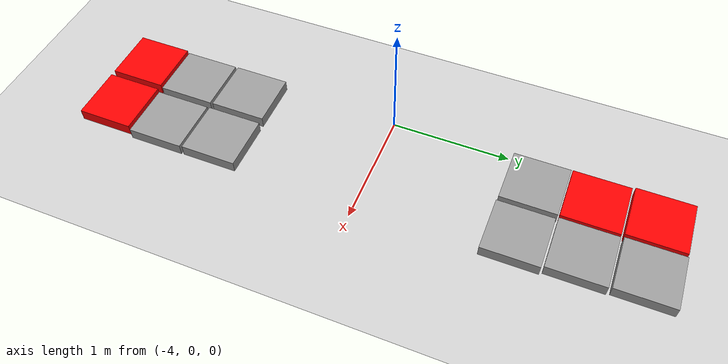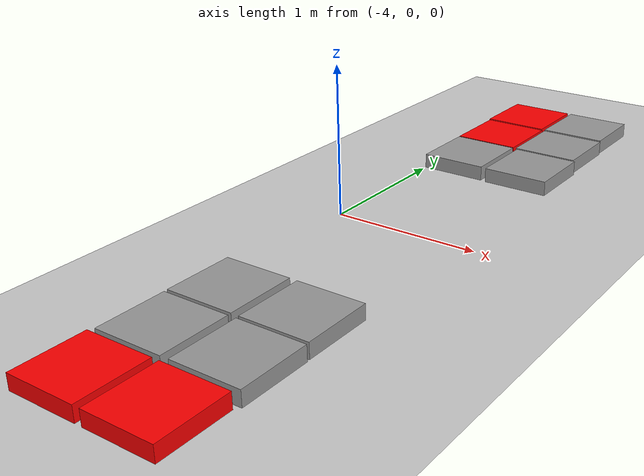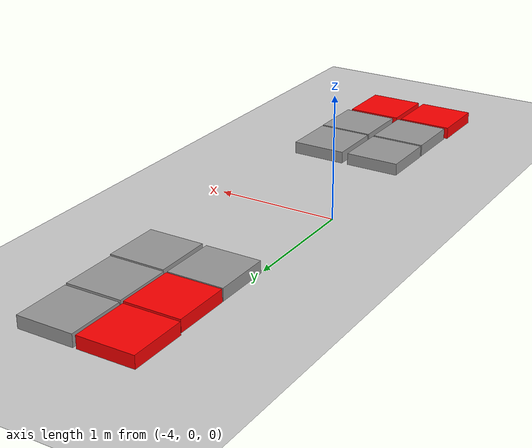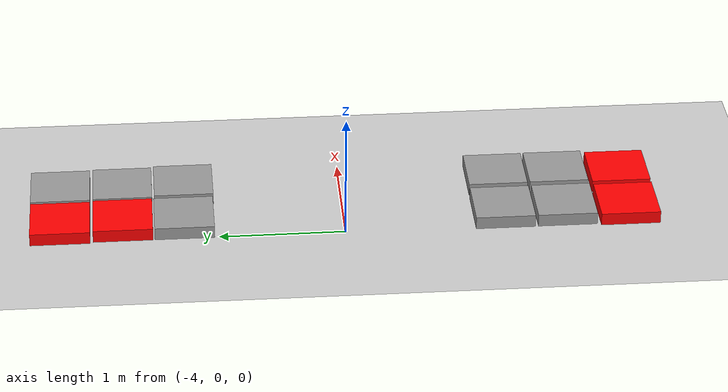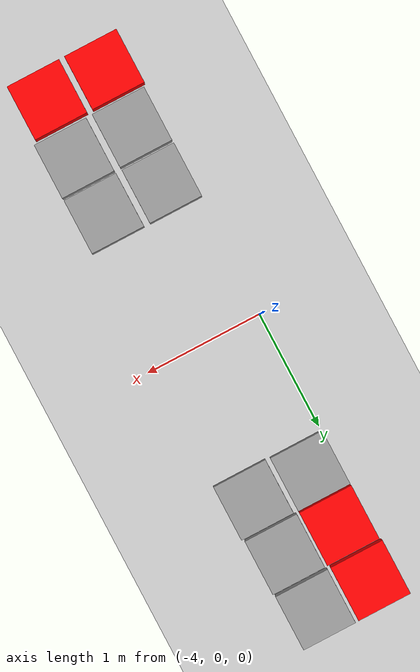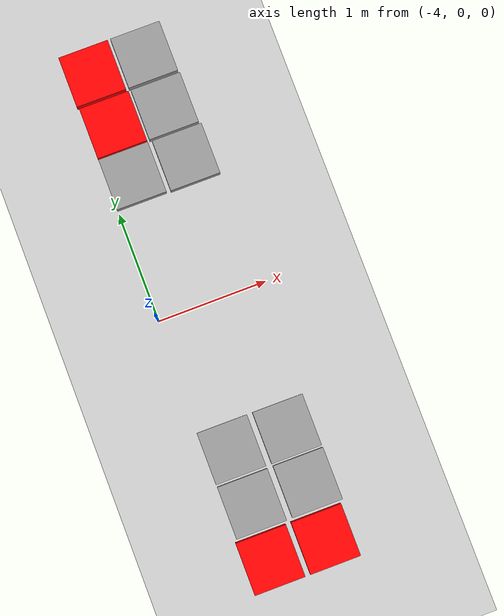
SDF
<sdf version="1.6">
 <world name="default">
  <light name="sun" type="directional">
   <pose>0 0 10 0 -0 0</pose>
   <diffuse>0.8 0.8 0.8 1</diffuse>
   <specular>0.1 0.1 0.1 1</specular>
   <attenuation>
    <range>1000</range>
    <constant>0.9</constant>
    <linear>0.01</linear>
    <quadratic>0.001</quadratic>
   </attenuation>
   <direction>-0.5 0.5 -1</direction>
  </light>
  <model name="ground_plane">
   <static>1</static>
   <link name="link">
    <collision name="collision">
     <geometry><plane><normal>0 0 1</normal><size>100 100</size></plane></geometry>
     <surface><friction><ode><mu>100</mu><mu2>50</mu2></ode></friction></surface>
    </collision>
    <visual name="visual">
     <cast_shadows>0</cast_shadows>
     <geometry><plane><normal>0 0 1</normal><size>100 100</size></plane></geometry>
     <material>
      <script><uri>file://media/materials/scripts/gazebo.material</uri><name>Gazebo/Grey</name></script>
     </material>
    </visual>
   </link>
  </model>
  <gravity>0 0 -9.8</gravity>
  <magnetic_field>6e-06 2.3e-05 -4.2e-05</magnetic_field>
  <atmosphere type="adiabatic"/>
  <physics name="default_physics" default="0" type="ode">
   <max_step_size>0.001</max_step_size>
   <real_time_factor>1</real_time_factor>
   <real_time_update_rate>1000</real_time_update_rate>
  </physics>
  <scene><ambient>0.4 0.4 0.4 1</ambient><background>0.7 0.7 0.7 1</background><shadows>1</shadows></scene>
  <spherical_coordinates>
   <surface_model>EARTH_WGS84</surface_model>
   <latitude_deg>0</latitude_deg>
   <longitude_deg>0</longitude_deg>
   <elevation>0</elevation>
   <heading_deg>0</heading_deg>
  </spherical_coordinates>
  <model name="unit_box_2">
   <link name="link">
    <inertial>
     <mass>1</mass>
     <inertia>
      <ixx>0.166667</ixx>
      <ixy>0</ixy>
      <ixz>0</ixz>
      <iyy>0.166667</iyy>
      <iyz>0</iyz>
      <izz>0.166667</izz>
     </inertia>
    </inertial>
    <visual name="visual">
     <geometry><box><size>0.459441 0.470843 0.100133</size></box></geometry>
     <material>
      <script><name>Gazebo/Grey</name><uri>file://media/materials/scripts/gazebo.material</uri></script>
      <ambient>0 0 0 1</ambient>
      <diffuse>0 0 0 1</diffuse>
      <specular>0 0 0 1</specular>
      <emissive>0 0 0 1</emissive>
      <shader type="vertex"><normal_map>__default__</normal_map></shader>
     </material>
    </visual>
    <collision name="collision">
     <geometry><box><size>0.459441 0.470843 0.100133</size></box></geometry>
     <surface>
      <friction>
       <ode><mu>1</mu><mu2>1</mu2><fdir1>0 0 0</fdir1><slip1>0</slip1><slip2>0</slip2></ode>
       <torsional>
        <coefficient>1</coefficient>
        <patch_radius>0</patch_radius>
        <surface_radius>0</surface_radius>
        <use_patch_radius>1</use_patch_radius>
        <ode><slip>0</slip></ode>
       </torsional>
      </friction>
      <bounce><restitution_coefficient>0</restitution_coefficient><threshold>1e+06</threshold></bounce>
      <contact>
       <collide_without_contact>0</collide_without_contact>
       <collide_without_contact_bitmask>1</collide_without_contact_bitmask>
       <collide_bitmask>1</collide_bitmask>
       <ode>
        <soft_cfm>0</soft_cfm>
        <soft_erp>0.2</soft_erp>
        <kp>1e+13</kp>
        <kd>1</kd>
        <max_vel>0.01</max_vel>
        <min_depth>0</min_depth>
       </ode>
       <bullet>
        <split_impulse>1</split_impulse>
        <split_impulse_penetration_threshold>-0.01</split_impulse_penetration_threshold>
        <soft_cfm>0</soft_cfm>
        <soft_erp>0.2</soft_erp>
        <kp>1e+13</kp>
        <kd>1</kd>
       </bullet>
      </contact>
     </surface>
    </collision>
   </link>
   <static>0</static>
   <pose>-3.2889 -1.26422 0.050066 0 -0 0</pose>
  </model>
  <model name="unit_box_2_0">
   <link name="link">
    <inertial>
     <mass>1</mass>
     <inertia>
      <ixx>0.166667</ixx>
      <ixy>0</ixy>
      <ixz>0</ixz>
      <iyy>0.166667</iyy>
      <iyz>0</iyz>
      <izz>0.166667</izz>
     </inertia>
    </inertial>
    <visual name="visual">
     <geometry><box><size>0.459441 0.470843 0.100133</size></box></geometry>
     <material>
      <script><name>Gazebo/Grey</name><uri>file://media/materials/scripts/gazebo.material</uri></script>
      <ambient>0 0 0 1</ambient>
      <diffuse>0 0 0 1</diffuse>
      <specular>0 0 0 1</specular>
      <emissive>0 0 0 1</emissive>
      <shader type="vertex"><normal_map>__default__</normal_map></shader>
     </material>
    </visual>
    <collision name="collision">
     <geometry><box><size>0.459441 0.470843 0.100133</size></box></geometry>
     <surface>
      <friction>
       <ode><mu>1</mu><mu2>1</mu2><fdir1>0 0 0</fdir1><slip1>0</slip1><slip2>0</slip2></ode>
       <torsional>
        <coefficient>1</coefficient>
        <patch_radius>0</patch_radius>
        <surface_radius>0</surface_radius>
        <use_patch_radius>1</use_patch_radius>
        <ode><slip>0</slip></ode>
       </torsional>
      </friction>
      <bounce><restitution_coefficient>0</restitution_coefficient><threshold>1e+06</threshold></bounce>
      <contact>
       <collide_without_contact>0</collide_without_contact>
       <collide_without_contact_bitmask>1</collide_without_contact_bitmask>
       <collide_bitmask>1</collide_bitmask>
       <ode>
        <soft_cfm>0</soft_cfm>
        <soft_erp>0.2</soft_erp>
        <kp>1e+13</kp>
        <kd>1</kd>
        <max_vel>0.01</max_vel>
        <min_depth>0</min_depth>
       </ode>
       <bullet>
        <split_impulse>1</split_impulse>
        <split_impulse_penetration_threshold>-0.01</split_impulse_penetration_threshold>
        <soft_cfm>0</soft_cfm>
        <soft_erp>0.2</soft_erp>
        <kp>1e+13</kp>
        <kd>1</kd>
       </bullet>
      </contact>
     </surface>
    </collision>
   </link>
   <static>0</static>
   <pose>-3.27419 1.26226 0.050066 0 -0 0</pose>
  </model>
  <model name="unit_box_2_1">
   <link name="link">
    <inertial>
     <mass>1</mass>
     <inertia>
      <ixx>0.166667</ixx>
      <ixy>0</ixy>
      <ixz>0</ixz>
      <iyy>0.166667</iyy>
      <iyz>0</iyz>
      <izz>0.166667</izz>
     </inertia>
    </inertial>
    <visual name="visual">
     <geometry><box><size>0.459441 0.470843 0.100133</size></box></geometry>
     <material>
      <script><name>Gazebo/Grey</name><uri>file://media/materials/scripts/gazebo.material</uri></script>
      <ambient>0 0 0 1</ambient>
      <diffuse>0 0 0 1</diffuse>
      <specular>0 0 0 1</specular>
      <emissive>0 0 0 1</emissive>
      <shader type="vertex"><normal_map>__default__</normal_map></shader>
     </material>
    </visual>
    <collision name="collision">
     <geometry><box><size>0.459441 0.470843 0.100133</size></box></geometry>
     <surface>
      <friction>
       <ode><mu>1</mu><mu2>1</mu2><fdir1>0 0 0</fdir1><slip1>0</slip1><slip2>0</slip2></ode>
       <torsional>
        <coefficient>1</coefficient>
        <patch_radius>0</patch_radius>
        <surface_radius>0</surface_radius>
        <use_patch_radius>1</use_patch_radius>
        <ode><slip>0</slip></ode>
       </torsional>
      </friction>
      <bounce><restitution_coefficient>0</restitution_coefficient><threshold>1e+06</threshold></bounce>
      <contact>
       <collide_without_contact>0</collide_without_contact>
       <collide_without_contact_bitmask>1</collide_without_contact_bitmask>
       <collide_bitmask>1</collide_bitmask>
       <ode>
        <soft_cfm>0</soft_cfm>
        <soft_erp>0.2</soft_erp>
        <kp>1e+13</kp>
        <kd>1</kd>
        <max_vel>0.01</max_vel>
        <min_depth>0</min_depth>
       </ode>
       <bullet>
        <split_impulse>1</split_impulse>
        <split_impulse_penetration_threshold>-0.01</split_impulse_penetration_threshold>
        <soft_cfm>0</soft_cfm>
        <soft_erp>0.2</soft_erp>
        <kp>1e+13</kp>
        <kd>1</kd>
       </bullet>
      </contact>
     </surface>
    </collision>
   </link>
   <static>0</static>
   <pose>-3.28537 -1.75609 0.050066 0 -0 0</pose>
  </model>
  <model name="unit_box_2_2">
   <link name="link">
    <inertial>
     <mass>1</mass>
     <inertia>
      <ixx>0.166667</ixx>
      <ixy>0</ixy>
      <ixz>0</ixz>
      <iyy>0.166667</iyy>
      <iyz>0</iyz>
      <izz>0.166667</izz>
     </inertia>
    </inertial>
    <visual name="visual">
     <geometry><box><size>0.459441 0.470843 0.100133</size></box></geometry>
     <material>
      <script><name>Gazebo/Grey</name><uri>file://media/materials/scripts/gazebo.material</uri></script>
      <ambient>0 0 0 1</ambient>
      <diffuse>0 0 0 1</diffuse>
      <specular>0 0 0 1</specular>
      <emissive>0 0 0 1</emissive>
      <shader type="vertex"><normal_map>__default__</normal_map></shader>
     </material>
    </visual>
    <collision name="collision">
     <geometry><box><size>0.459441 0.470843 0.100133</size></box></geometry>
     <surface>
      <friction>
       <ode><mu>1</mu><mu2>1</mu2><fdir1>0 0 0</fdir1><slip1>0</slip1><slip2>0</slip2></ode>
       <torsional>
        <coefficient>1</coefficient>
        <patch_radius>0</patch_radius>
        <surface_radius>0</surface_radius>
        <use_patch_radius>1</use_patch_radius>
        <ode><slip>0</slip></ode>
       </torsional>
      </friction>
      <bounce><restitution_coefficient>0</restitution_coefficient><threshold>1e+06</threshold></bounce>
      <contact>
       <collide_without_contact>0</collide_without_contact>
       <collide_without_contact_bitmask>1</collide_without_contact_bitmask>
       <collide_bitmask>1</collide_bitmask>
       <ode>
        <soft_cfm>0</soft_cfm>
        <soft_erp>0.2</soft_erp>
        <kp>1e+13</kp>
        <kd>1</kd>
        <max_vel>0.01</max_vel>
        <min_depth>0</min_depth>
       </ode>
       <bullet>
        <split_impulse>1</split_impulse>
        <split_impulse_penetration_threshold>-0.01</split_impulse_penetration_threshold>
        <soft_cfm>0</soft_cfm>
        <soft_erp>0.2</soft_erp>
        <kp>1e+13</kp>
        <kd>1</kd>
       </bullet>
      </contact>
     </surface>
    </collision>
   </link>
   <static>0</static>
   <pose>-3.77257 1.26948 0.050066 0 -0 0</pose>
  </model>
  <model name="unit_box_1">
   <link name="link">
    <inertial>
     <mass>1</mass>
     <inertia>
      <ixx>0.166667</ixx>
      <ixy>0</ixy>
      <ixz>0</ixz>
      <iyy>0.166667</iyy>
      <iyz>0</iyz>
      <izz>0.166667</izz>
     </inertia>
    </inertial>
    <visual name="visual">
     <geometry><box><size>0.459441 0.470843 0.100133</size></box></geometry>
     <material>
      <script><name>Gazebo/Grey</name><uri>file://media/materials/scripts/gazebo.material</uri></script>
      <ambient>1 1 1 1</ambient>
      <diffuse>1 1 1 1</diffuse>
      <specular>1 1 1 1</specular>
      <emissive>0 0 0 1</emissive>
      <shader type="vertex"><normal_map>__default__</normal_map></shader>
     </material>
    </visual>
    <collision name="collision">
     <geometry><box><size>0.459441 0.470843 0.100133</size></box></geometry>
     <surface>
      <friction>
       <ode><mu>1</mu><mu2>1</mu2><fdir1>0 0 0</fdir1><slip1>0</slip1><slip2>0</slip2></ode>
       <torsional>
        <coefficient>1</coefficient>
        <patch_radius>0</patch_radius>
        <surface_radius>0</surface_radius>
        <use_patch_radius>1</use_patch_radius>
        <ode><slip>0</slip></ode>
       </torsional>
      </friction>
      <bounce><restitution_coefficient>0</restitution_coefficient><threshold>1e+06</threshold></bounce>
      <contact>
       <collide_without_contact>0</collide_without_contact>
       <collide_without_contact_bitmask>1</collide_without_contact_bitmask>
       <collide_bitmask>1</collide_bitmask>
       <ode>
        <soft_cfm>0</soft_cfm>
        <soft_erp>0.2</soft_erp>
        <kp>1e+13</kp>
        <kd>1</kd>
        <max_vel>0.01</max_vel>
        <min_depth>0</min_depth>
       </ode>
       <bullet>
        <split_impulse>1</split_impulse>
        <split_impulse_penetration_threshold>-0.01</split_impulse_penetration_threshold>
        <soft_cfm>0</soft_cfm>
        <soft_erp>0.2</soft_erp>
        <kp>1e+13</kp>
        <kd>1</kd>
       </bullet>
      </contact>
     </surface>
    </collision>
   </link>
   <static>0</static>
   <pose>-3.80023 -1.2637 0.050066 0 -0 0</pose>
  </model>
  <model name="unit_box_1_0">
   <link name="link">
    <inertial>
     <mass>1</mass>
     <inertia>
      <ixx>0.166667</ixx>
      <ixy>0</ixy>
      <ixz>0</ixz>
      <iyy>0.166667</iyy>
      <iyz>0</iyz>
      <izz>0.166667</izz>
     </inertia>
    </inertial>
    <visual name="visual">
     <geometry><box><size>0.459441 0.470843 0.100133</size></box></geometry>
     <material>
      <script><name>Gazebo/Grey</name><uri>file://media/materials/scripts/gazebo.material</uri></script>
      <ambient>1 1 1 1</ambient>
      <diffuse>1 1 1 1</diffuse>
      <specular>1 1 1 1</specular>
      <emissive>0 0 0 1</emissive>
      <shader type="vertex"><normal_map>__default__</normal_map></shader>
     </material>
    </visual>
    <collision name="collision">
     <geometry><box><size>0.459441 0.470843 0.100133</size></box></geometry>
     <surface>
      <friction>
       <ode><mu>1</mu><mu2>1</mu2><fdir1>0 0 0</fdir1><slip1>0</slip1><slip2>0</slip2></ode>
       <torsional>
        <coefficient>1</coefficient>
        <patch_radius>0</patch_radius>
        <surface_radius>0</surface_radius>
        <use_patch_radius>1</use_patch_radius>
        <ode><slip>0</slip></ode>
       </torsional>
      </friction>
      <bounce><restitution_coefficient>0</restitution_coefficient><threshold>1e+06</threshold></bounce>
      <contact>
       <collide_without_contact>0</collide_without_contact>
       <collide_without_contact_bitmask>1</collide_without_contact_bitmask>
       <collide_bitmask>1</collide_bitmask>
       <ode>
        <soft_cfm>0</soft_cfm>
        <soft_erp>0.2</soft_erp>
        <kp>1e+13</kp>
        <kd>1</kd>
        <max_vel>0.01</max_vel>
        <min_depth>0</min_depth>
       </ode>
       <bullet>
        <split_impulse>1</split_impulse>
        <split_impulse_penetration_threshold>-0.01</split_impulse_penetration_threshold>
        <soft_cfm>0</soft_cfm>
        <soft_erp>0.2</soft_erp>
        <kp>1e+13</kp>
        <kd>1</kd>
       </bullet>
      </contact>
     </surface>
    </collision>
   </link>
   <static>0</static>
   <pose>-3.29223 1.75189 0.050066 0 -0 0</pose>
  </model>
  <model name="unit_box_1_1">
   <link name="link">
    <inertial>
     <mass>1</mass>
     <inertia>
      <ixx>0.166667</ixx>
      <ixy>0</ixy>
      <ixz>0</ixz>
      <iyy>0.166667</iyy>
      <iyz>0</iyz>
      <izz>0.166667</izz>
     </inertia>
    </inertial>
    <visual name="visual">
     <geometry><box><size>0.459441 0.470843 0.100133</size></box></geometry>
     <material>
      <script><name>Gazebo/Grey</name><uri>file://media/materials/scripts/gazebo.material</uri></script>
      <ambient>1 1 1 1</ambient>
      <diffuse>1 1 1 1</diffuse>
      <specular>1 1 1 1</specular>
      <emissive>0 0 0 1</emissive>
      <shader type="vertex"><normal_map>__default__</normal_map></shader>
     </material>
    </visual>
    <collision name="collision">
     <geometry><box><size>0.459441 0.470843 0.100133</size></box></geometry>
     <surface>
      <friction>
       <ode><mu>1</mu><mu2>1</mu2><fdir1>0 0 0</fdir1><slip1>0</slip1><slip2>0</slip2></ode>
       <torsional>
        <coefficient>1</coefficient>
        <patch_radius>0</patch_radius>
        <surface_radius>0</surface_radius>
        <use_patch_radius>1</use_patch_radius>
        <ode><slip>0</slip></ode>
       </torsional>
      </friction>
      <bounce><restitution_coefficient>0</restitution_coefficient><threshold>1e+06</threshold></bounce>
      <contact>
       <collide_without_contact>0</collide_without_contact>
       <collide_without_contact_bitmask>1</collide_without_contact_bitmask>
       <collide_bitmask>1</collide_bitmask>
       <ode>
        <soft_cfm>0</soft_cfm>
        <soft_erp>0.2</soft_erp>
        <kp>1e+13</kp>
        <kd>1</kd>
        <max_vel>0.01</max_vel>
        <min_depth>0</min_depth>
       </ode>
       <bullet>
        <split_impulse>1</split_impulse>
        <split_impulse_penetration_threshold>-0.01</split_impulse_penetration_threshold>
        <soft_cfm>0</soft_cfm>
        <soft_erp>0.2</soft_erp>
        <kp>1e+13</kp>
        <kd>1</kd>
       </bullet>
      </contact>
     </surface>
    </collision>
   </link>
   <static>0</static>
   <pose>-3.79797 -1.75801 0.050066 0 -0 0</pose>
  </model>
  <model name="unit_box_1_2">
   <link name="link">
    <inertial>
     <mass>1</mass>
     <inertia>
      <ixx>0.166667</ixx>
      <ixy>0</ixy>
      <ixz>0</ixz>
      <iyy>0.166667</iyy>
      <iyz>0</iyz>
      <izz>0.166667</izz>
     </inertia>
    </inertial>
    <visual name="visual">
     <geometry><box><size>0.459441 0.470843 0.100133</size></box></geometry>
     <material>
      <script><name>Gazebo/Grey</name><uri>file://media/materials/scripts/gazebo.material</uri></script>
      <ambient>1 1 1 1</ambient>
      <diffuse>1 1 1 1</diffuse>
      <specular>1 1 1 1</specular>
      <emissive>0 0 0 1</emissive>
      <shader type="vertex"><normal_map>__default__</normal_map></shader>
     </material>
    </visual>
    <collision name="collision">
     <geometry><box><size>0.459441 0.470843 0.100133</size></box></geometry>
     <surface>
      <friction>
       <ode><mu>1</mu><mu2>1</mu2><fdir1>0 0 0</fdir1><slip1>0</slip1><slip2>0</slip2></ode>
       <torsional>
        <coefficient>1</coefficient>
        <patch_radius>0</patch_radius>
        <surface_radius>0</surface_radius>
        <use_patch_radius>1</use_patch_radius>
        <ode><slip>0</slip></ode>
       </torsional>
      </friction>
      <bounce><restitution_coefficient>0</restitution_coefficient><threshold>1e+06</threshold></bounce>
      <contact>
       <collide_without_contact>0</collide_without_contact>
       <collide_without_contact_bitmask>1</collide_without_contact_bitmask>
       <collide_bitmask>1</collide_bitmask>
       <ode>
        <soft_cfm>0</soft_cfm>
        <soft_erp>0.2</soft_erp>
        <kp>1e+13</kp>
        <kd>1</kd>
        <max_vel>0.01</max_vel>
        <min_depth>0</min_depth>
       </ode>
       <bullet>
        <split_impulse>1</split_impulse>
        <split_impulse_penetration_threshold>-0.01</split_impulse_penetration_threshold>
        <soft_cfm>0</soft_cfm>
        <soft_erp>0.2</soft_erp>
        <kp>1e+13</kp>
        <kd>1</kd>
       </bullet>
      </contact>
     </surface>
    </collision>
   </link>
   <static>0</static>
   <pose>-3.30228 2.2469 0.050066 0 -0 0</pose>
  </model>
  <model name="unit_box_0">
   <link name="link">
    <inertial>
     <mass>1</mass>
     <inertia>
      <ixx>0.166667</ixx>
      <ixy>0</ixy>
      <ixz>0</ixz>
      <iyy>0.166667</iyy>
      <iyz>0</iyz>
      <izz>0.166667</izz>
     </inertia>
    </inertial>
    <visual name="visual">
     <geometry><box><size>0.459441 0.470843 0.100133</size></box></geometry>
     <material>
      <script><name>Gazebo/Grey</name><uri>file://media/materials/scripts/gazebo.material</uri></script>
      <ambient>1 0 0 1</ambient>
      <diffuse>1 0 0 1</diffuse>
      <specular>1 0 0 1</specular>
      <emissive>0 0 0 1</emissive>
      <shader type="vertex"><normal_map>__default__</normal_map></shader>
     </material>
    </visual>
    <collision name="collision">
     <geometry><box><size>0.459441 0.470843 0.100133</size></box></geometry>
     <surface>
      <friction>
       <ode><mu>1</mu><mu2>1</mu2><fdir1>0 0 0</fdir1><slip1>0</slip1><slip2>0</slip2></ode>
       <torsional>
        <coefficient>1</coefficient>
        <patch_radius>0</patch_radius>
        <surface_radius>0</surface_radius>
        <use_patch_radius>1</use_patch_radius>
        <ode><slip>0</slip></ode>
       </torsional>
      </friction>
      <bounce><restitution_coefficient>0</restitution_coefficient><threshold>1e+06</threshold></bounce>
      <contact>
       <collide_without_contact>0</collide_without_contact>
       <collide_without_contact_bitmask>1</collide_without_contact_bitmask>
       <collide_bitmask>1</collide_bitmask>
       <ode>
        <soft_cfm>0</soft_cfm>
        <soft_erp>0.2</soft_erp>
        <kp>1e+13</kp>
        <kd>1</kd>
        <max_vel>0.01</max_vel>
        <min_depth>0</min_depth>
       </ode>
       <bullet>
        <split_impulse>1</split_impulse>
        <split_impulse_penetration_threshold>-0.01</split_impulse_penetration_threshold>
        <soft_cfm>0</soft_cfm>
        <soft_erp>0.2</soft_erp>
        <kp>1e+13</kp>
        <kd>1</kd>
       </bullet>
      </contact>
     </surface>
    </collision>
   </link>
   <static>0</static>
   <pose>-3.31178 -2.25865 0.050066 0 -0 0</pose>
  </model>
  <model name="unit_box_0_0">
   <link name="link">
    <inertial>
     <mass>1</mass>
     <inertia>
      <ixx>0.166667</ixx>
      <ixy>0</ixy>
      <ixz>0</ixz>
      <iyy>0.166667</iyy>
      <iyz>0</iyz>
      <izz>0.166667</izz>
     </inertia>
    </inertial>
    <visual name="visual">
     <geometry><box><size>0.459441 0.470843 0.100133</size></box></geometry>
     <material>
      <script><name>Gazebo/Grey</name><uri>file://media/materials/scripts/gazebo.material</uri></script>
      <ambient>1 0 0 1</ambient>
      <diffuse>1 0 0 1</diffuse>
      <specular>1 0 0 1</specular>
      <emissive>0 0 0 1</emissive>
      <shader type="vertex"><normal_map>__default__</normal_map></shader>
     </material>
    </visual>
    <collision name="collision">
     <geometry><box><size>0.459441 0.470843 0.100133</size></box></geometry>
     <surface>
      <friction>
       <ode><mu>1</mu><mu2>1</mu2><fdir1>0 0 0</fdir1><slip1>0</slip1><slip2>0</slip2></ode>
       <torsional>
        <coefficient>1</coefficient>
        <patch_radius>0</patch_radius>
        <surface_radius>0</surface_radius>
        <use_patch_radius>1</use_patch_radius>
        <ode><slip>0</slip></ode>
       </torsional>
      </friction>
      <bounce><restitution_coefficient>0</restitution_coefficient><threshold>1e+06</threshold></bounce>
      <contact>
       <collide_without_contact>0</collide_without_contact>
       <collide_without_contact_bitmask>1</collide_without_contact_bitmask>
       <collide_bitmask>1</collide_bitmask>
       <ode>
        <soft_cfm>0</soft_cfm>
        <soft_erp>0.2</soft_erp>
        <kp>1e+13</kp>
        <kd>1</kd>
        <max_vel>0.01</max_vel>
        <min_depth>0</min_depth>
       </ode>
       <bullet>
        <split_impulse>1</split_impulse>
        <split_impulse_penetration_threshold>-0.01</split_impulse_penetration_threshold>
        <soft_cfm>0</soft_cfm>
        <soft_erp>0.2</soft_erp>
        <kp>1e+13</kp>
        <kd>1</kd>
       </bullet>
      </contact>
     </surface>
    </collision>
   </link>
   <static>0</static>
   <pose>-3.77432 1.7526 0.050066 0 0 -2.5e-05</pose>
  </model>
  <model name="unit_box_0_1">
   <link name="link">
    <inertial>
     <mass>1</mass>
     <inertia>
      <ixx>0.166667</ixx>
      <ixy>0</ixy>
      <ixz>0</ixz>
      <iyy>0.166667</iyy>
      <iyz>0</iyz>
      <izz>0.166667</izz>
     </inertia>
    </inertial>
    <visual name="visual">
     <geometry><box><size>0.459441 0.470843 0.100133</size></box></geometry>
     <material>
      <script><name>Gazebo/Grey</name><uri>file://media/materials/scripts/gazebo.material</uri></script>
      <ambient>1 0 0 1</ambient>
      <diffuse>1 0 0 1</diffuse>
      <specular>1 0 0 1</specular>
      <emissive>0 0 0 1</emissive>
      <shader type="vertex"><normal_map>__default__</normal_map></shader>
     </material>
    </visual>
    <collision name="collision">
     <geometry><box><size>0.459441 0.470843 0.100133</size></box></geometry>
     <surface>
      <friction>
       <ode><mu>1</mu><mu2>1</mu2><fdir1>0 0 0</fdir1><slip1>0</slip1><slip2>0</slip2></ode>
       <torsional>
        <coefficient>1</coefficient>
        <patch_radius>0</patch_radius>
        <surface_radius>0</surface_radius>
        <use_patch_radius>1</use_patch_radius>
        <ode><slip>0</slip></ode>
       </torsional>
      </friction>
      <bounce><restitution_coefficient>0</restitution_coefficient><threshold>1e+06</threshold></bounce>
      <contact>
       <collide_without_contact>0</collide_without_contact>
       <collide_without_contact_bitmask>1</collide_without_contact_bitmask>
       <collide_bitmask>1</collide_bitmask>
       <ode>
        <soft_cfm>0</soft_cfm>
        <soft_erp>0.2</soft_erp>
        <kp>1e+13</kp>
        <kd>1</kd>
        <max_vel>0.01</max_vel>
        <min_depth>0</min_depth>
       </ode>
       <bullet>
        <split_impulse>1</split_impulse>
        <split_impulse_penetration_threshold>-0.01</split_impulse_penetration_threshold>
        <soft_cfm>0</soft_cfm>
        <soft_erp>0.2</soft_erp>
        <kp>1e+13</kp>
        <kd>1</kd>
       </bullet>
      </contact>
     </surface>
    </collision>
   </link>
   <static>0</static>
   <pose>-3.81848 -2.25854 0.050066 0 -0 0</pose>
  </model>
  <model name="unit_box_0_2">
   <link name="link">
    <inertial>
     <mass>1</mass>
     <inertia>
      <ixx>0.166667</ixx>
      <ixy>0</ixy>
      <ixz>0</ixz>
      <iyy>0.166667</iyy>
      <iyz>0</iyz>
      <izz>0.166667</izz>
     </inertia>
    </inertial>
    <visual name="visual">
     <geometry><box><size>0.459441 0.470843 0.100133</size></box></geometry>
     <material>
      <script><name>Gazebo/Grey</name><uri>file://media/materials/scripts/gazebo.material</uri></script>
      <ambient>1 0 0 1</ambient>
      <diffuse>1 0 0 1</diffuse>
      <specular>1 0 0 1</specular>
      <emissive>0 0 0 1</emissive>
      <shader type="vertex"><normal_map>__default__</normal_map></shader>
     </material>
    </visual>
    <collision name="collision">
     <geometry><box><size>0.459441 0.470843 0.100133</size></box></geometry>
     <surface>
      <friction>
       <ode><mu>1</mu><mu2>1</mu2><fdir1>0 0 0</fdir1><slip1>0</slip1><slip2>0</slip2></ode>
       <torsional>
        <coefficient>1</coefficient>
        <patch_radius>0</patch_radius>
        <surface_radius>0</surface_radius>
        <use_patch_radius>1</use_patch_radius>
        <ode><slip>0</slip></ode>
       </torsional>
      </friction>
      <bounce><restitution_coefficient>0</restitution_coefficient><threshold>1e+06</threshold></bounce>
      <contact>
       <collide_without_contact>0</collide_without_contact>
       <collide_without_contact_bitmask>1</collide_without_contact_bitmask>
       <collide_bitmask>1</collide_bitmask>
       <ode>
        <soft_cfm>0</soft_cfm>
        <soft_erp>0.2</soft_erp>
        <kp>1e+13</kp>
        <kd>1</kd>
        <max_vel>0.01</max_vel>
        <min_depth>0</min_depth>
       </ode>
       <bullet>
        <split_impulse>1</split_impulse>
        <split_impulse_penetration_threshold>-0.01</split_impulse_penetration_threshold>
        <soft_cfm>0</soft_cfm>
        <soft_erp>0.2</soft_erp>
        <kp>1e+13</kp>
        <kd>1</kd>
       </bullet>
      </contact>
     </surface>
    </collision>
   </link>
   <static>0</static>
   <pose>-3.78894 2.24611 0.050066 0 0 -2.7e-05</pose>
  </model>
 </world>
</sdf>
